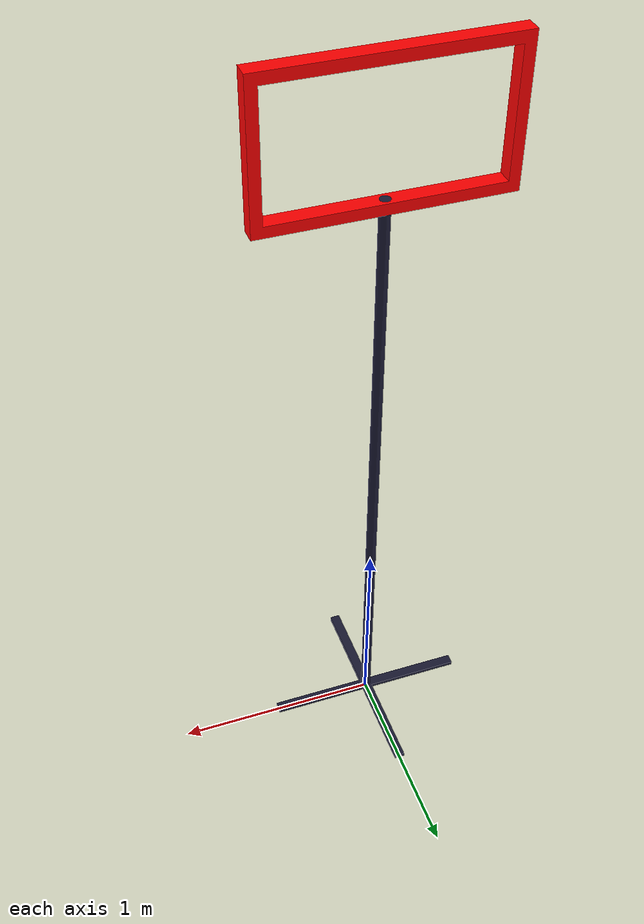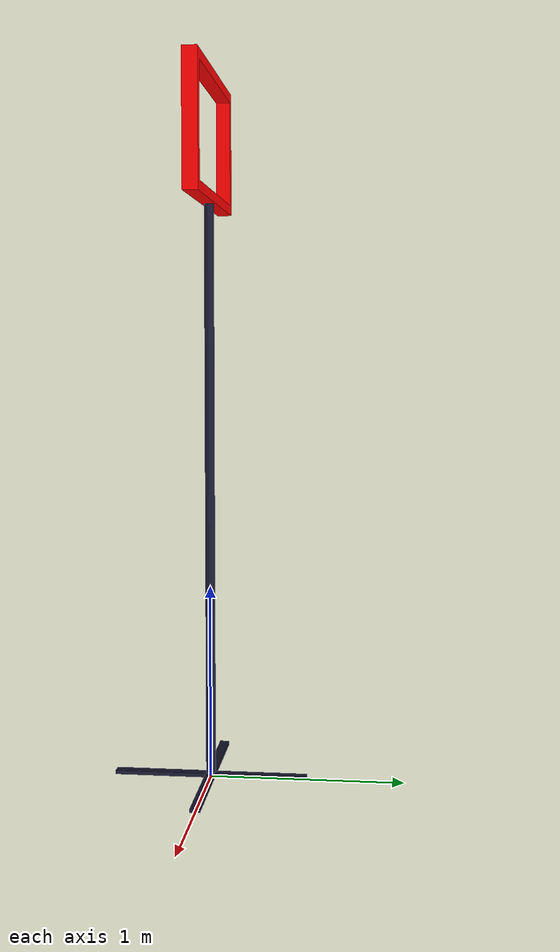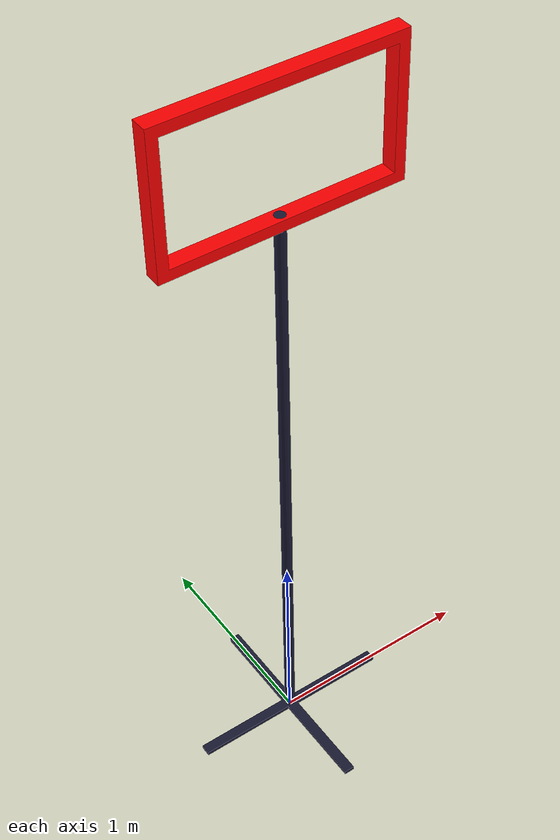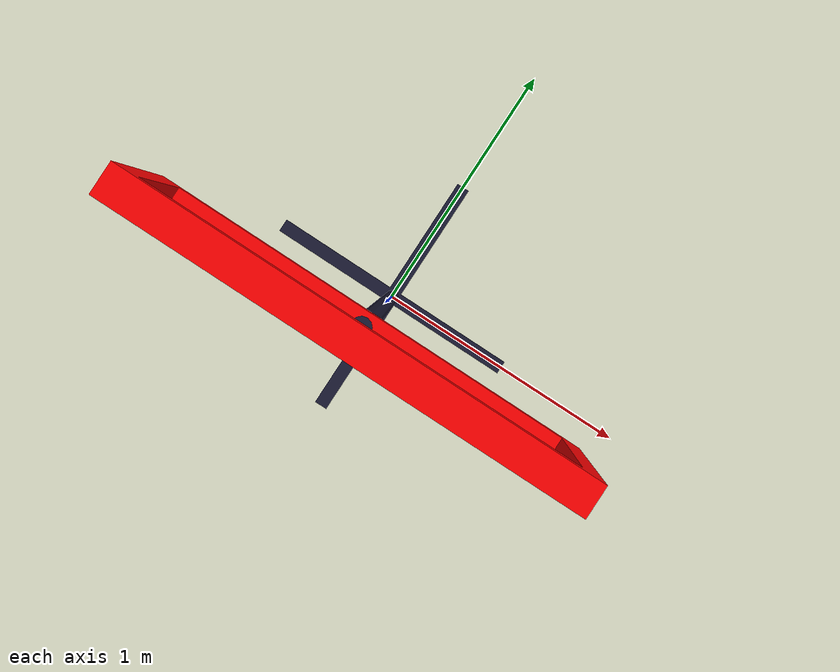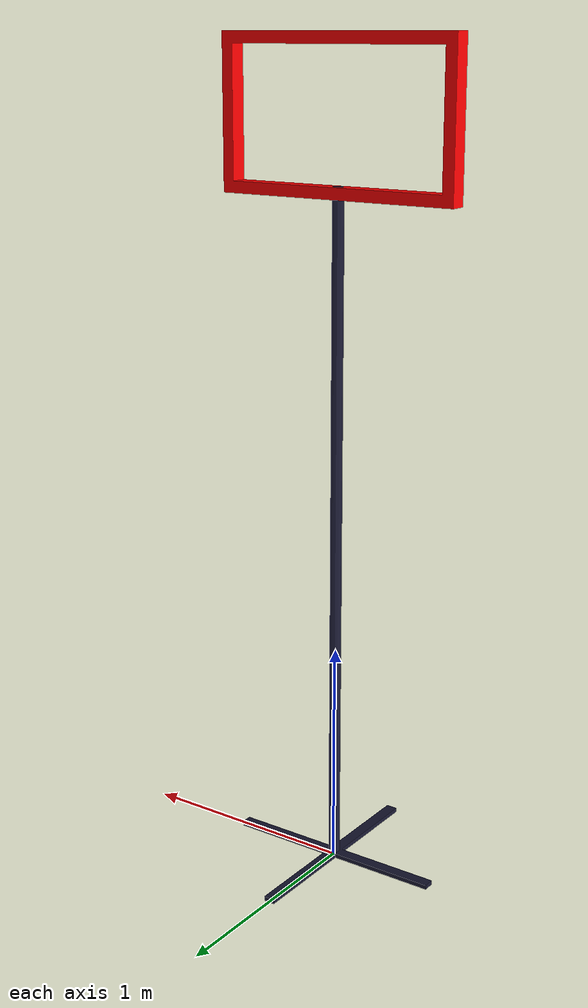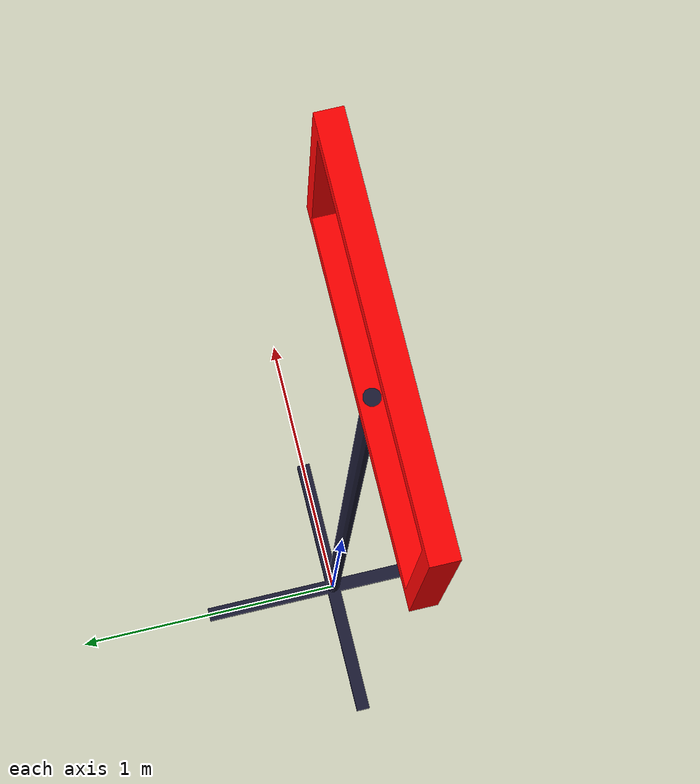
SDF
<?xml version="1.0" encoding="utf-8"?>
<sdf version='1.6'>
  <model name='grid_gate'>
    <link name='base_link'>
      <pose frame=''>0 0 0 0 -0 0</pose>
      <inertial>
        <pose frame=''>0 0.441032 2.004 0 -0 0</pose>
        <mass>20.0782</mass>
        <inertia>
          <ixx>65.934</ixx>
          <ixy>-6.33656e-15</ixy>
          <ixz>6.20072e-15</ixz>
          <iyy>54.2153</iyy>
          <iyz>17.7457</iyz>
          <izz>15.827</izz>
        </inertia>
      </inertial>
      <collision name='base_link_collision'>
        <pose frame=''>0 0 0 0 -0 0</pose>
        <geometry>
          <mesh>
            <scale>1 1 1</scale>
            <uri>model://grid_gate/meshes/base_link.STL</uri>
          </mesh>
        </geometry>
      </collision>
      <collision name='base_link_fixed_joint_lump__frame_collision_1'>
        <pose frame=''>0 0 2.95 1.5708 -0 0</pose>
        <geometry>
          <mesh>
            <scale>1 1 1</scale>
            <uri>model://grid_gate/meshes/frame.STL</uri>
          </mesh>
        </geometry>
      </collision>
      <visual name='base_link_visual'>
        <pose frame=''>0 0 0 0 -0 0</pose>
        <geometry>
          <mesh>
            <scale>1 1 1</scale>
            <uri>model://grid_gate/meshes/base_link.STL</uri>
          </mesh>
        </geometry>

        <material>
          <ambient>0.1 0.1 0.1 1</ambient>
          <diffuse>0.1 0.1 0.2 1</diffuse>
          <specular>0 0 0 0</specular>
          <emissive>0 0 0 1</emissive>
        </material>

      </visual>
      <visual name='base_link_fixed_joint_lump__frame_visual_1'>
        <pose frame=''>0 0 2.95 1.5708 -0 0</pose>
        <geometry>
          <mesh>
            <scale>1 1 1</scale>
            <uri>model://grid_gate/meshes/frame.STL</uri>
          </mesh>
        </geometry>

        <material>
          <ambient>1 0 0 1</ambient>
          <diffuse>1 0 0 1</diffuse>
          <specular>0.1 0.1 0.1 1</specular>
          <emissive>0 0 0 0</emissive>
        </material>

      </visual>
    </link>
  </model>
</sdf>
